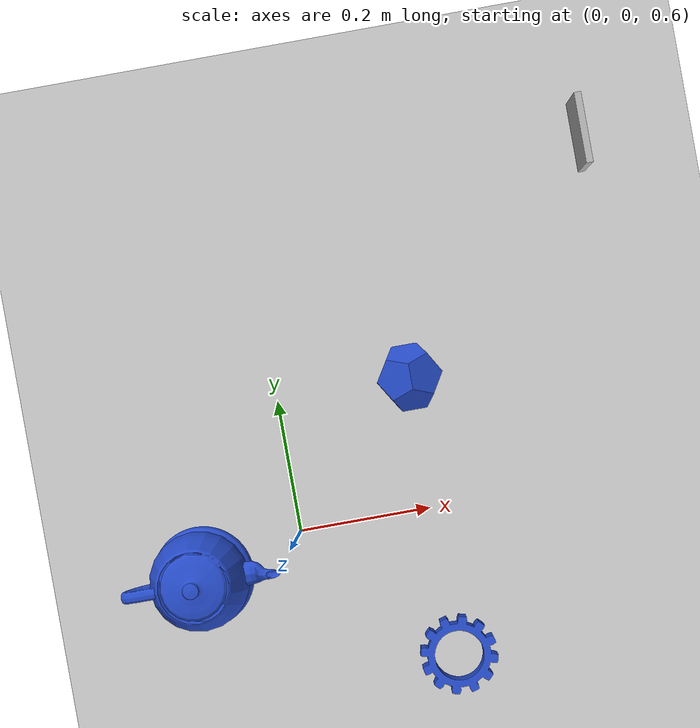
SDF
<?xml version="1.0" ?>
<sdf version="1.4">
  <world name="default">
    <include>
      <uri>model://ground_plane</uri>
    </include>

    <include>
      <uri>model://gears</uri>
      <name>gears1</name>
      <pose>0.2 -0.2 0.7 0 0 0</pose>
    </include>

    <include>
      <uri>model://teapot</uri>
      <name>teapot1</name>
      <pose>-0.1 0.0 0.9 0 0 0</pose>
    </include>

    <include>
      <uri>model://dodecahedron</uri>
      <name>dodecahedron1</name>
      <pose>0.2 0.2 0.7 0 0 0</pose>
    </include>

    <include>
      <uri>model://toroid</uri>
      <name>toroid1</name>
      <pose>-0.1 0.0 0.9 0 0 0</pose>
    </include>

    <include>
      <uri>model://toroidknot</uri>
      <name>toroidknot1</name>
      <pose>-0.1 0.0 0.9 0 0 0</pose>
    </include>

    <light name='user_point_light_0' type='point'>
      <pose frame=''>0.573839 -0.613666 1 0 -0 0</pose>
      <diffuse>0.5 0.5 0.5 1</diffuse>
      <specular>0.1 0.1 0.1 1</specular>
      <attenuation>
        <range>20</range>
        <constant>0.5</constant>
        <linear>0.01</linear>
        <quadratic>0.001</quadratic>
      </attenuation>
      <cast_shadows>0</cast_shadows>
      <direction>0 0 -1</direction>
    </light>

    <light name='user_point_light_1' type='point'>
      <pose frame=''>0.573839 -0.613666 1 0 -0 0</pose>
      <diffuse>0.5 0.5 0.5 1</diffuse>
      <specular>0.1 0.1 0.1 1</specular>
      <attenuation>
        <range>20</range>
        <constant>0.5</constant>
        <linear>0.01</linear>
        <quadratic>0.001</quadratic>
      </attenuation>
      <cast_shadows>0</cast_shadows>
      <direction>0 0 -1</direction>
    </light>

    <light name='user_spot_light_0' type='spot'>
      <pose frame=''>-1.7095 -0.748352 1 0 -0 0</pose>
      <diffuse>0.5 0.5 0.5 1</diffuse>
      <specular>0.1 0.1 0.1 1</specular>
      <direction>0 0 -1</direction>
      <attenuation>
        <range>20</range>
        <constant>0.5</constant>
        <linear>0.01</linear>
        <quadratic>0.001</quadratic>
      </attenuation>
      <cast_shadows>0</cast_shadows>
      <spot>
        <inner_angle>0.6</inner_angle>
        <outer_angle>1</outer_angle>
        <falloff>1</falloff>
      </spot>
    </light>

    <model name='rgb_cam'>
      <static>1</static>
      <pose frame=''>0.5 0.5 0.7 0 1.57 0</pose>
      <link name='rgb_camera'>
        <inertial>
          <mass>0.1</mass>
          <inertia>
            <ixx>8.41666666667e-05</ixx>
            <ixy>0</ixy>
            <ixz>0</ixz>
            <iyy>3.08333333333e-05</iyy>
            <iyz>0</iyz>
            <izz>0.000113333333333</izz>
          </inertia>
        </inertial>
        <collision name='collision'>
          <geometry>
            <box>
              <size>0.060 0.1 0.010</size>
            </box>
          </geometry>
          <max_contacts>10</max_contacts>
          <surface>
            <contact>
              <ode/>
            </contact>
            <bounce/>
            <friction>
              <torsional>
                <ode/>
              </torsional>
              <ode/>
            </friction>
          </surface>
        </collision>
        <visual name='visual'>
          <geometry>
            <box>
              <size>0.060 0.1 0.010</size>
            </box>
          </geometry>
        </visual>
        <sensor name="camera" type="camera">
          <camera>
            <horizontal_fov>1.57</horizontal_fov>
            <image>
              <width>640</width>
              <height>480</height>
              <format>R8G8B8</format>
            </image>
            <clip>
              <near>0.1</near>
              <far>100</far>
            </clip>
          </camera>
          <always_on>1</always_on>
          <update_rate>30</update_rate>
          <visualize>true</visualize>
          <plugin filename="libgazebo_ros_camera.so" name="camera_in_ros">
            <robotNamespace>dynamic_objects</robotNamespace>
            <cameraName>camera</cameraName>
            <imageTopicName>raw_image</imageTopicName>
            <cameraInfoTopicName>info_image</cameraInfoTopicName>
            <FrameName>cameraImage</FrameName>
            <Cy>0</Cy>
            <Cx>0</Cx>
            <updateRate>10.0</updateRate>
          </plugin>
        </sensor>
        <self_collide>0</self_collide>
        <kinematic>0</kinematic>
      </link>
    </model>

    <joint name = "joint_to_world" type="fixed">
      <parent>world</parent>
      <child>rgb_camera::link</child>
    </joint>

    <atmosphere type='adiabatic'/>
    <scene>
      <sky>
        <clouds>
          <speed>12</speed>
        </clouds>
      </sky>
    </scene>

    <physics name='default_physics' default='0' type='ode'>
      <max_step_size>0.001</max_step_size>
      <real_time_factor>1</real_time_factor>
      <real_time_update_rate>1000</real_time_update_rate>
    </physics>

    <!-- reference to your plugin -->
    <plugin name="dynamic_world_plugin" filename="libdynamic_world_plugin.so">
      <update_frequency>1.0</update_frequency>

      <model_to_track_name>banana1</model_to_track_name>

      <model_to_ignore_randcolours>garbagecollector,rgb_cam</model_to_ignore_randcolours>
      <model_to_ignore_movement>garbagecollector,rgb_cam,demo_table1,ground_plane,fetch,rubbish_bin1</model_to_ignore_movement>

      <x_max>0.7</x_max>
      <x_min>0.3</x_min>
      <y_max>0.7</y_max>
      <y_min>0.3</y_min>
      <z_max>0.01</z_max>
      <z_min>0.01</z_min>

      <x_max_distractors>1.0</x_max_distractors>
      <x_min_distractors>0.0</x_min_distractors>
      <y_max_distractors>1.0</y_max_distractors>
      <y_min_distractors>0.0</y_min_distractors>
      <z_max_distractors>0.03</z_max_distractors>
      <z_min_distractors>0.03</z_min_distractors>

      <z_increment_percentage>0.0</z_increment_percentage>

      <roll_max>0.0</roll_max>
      <roll_min>0.0</roll_min>
      <pitch_max>0.0</pitch_max>
      <pitch_min>0.0</pitch_min>
      <yaw_max>0.0</yaw_max>
      <yaw_min>0.0</yaw_min>

      <light_x_max>2.0</light_x_max>
      <light_x_min>-2.0</light_x_min>
      <light_y_max>2.0</light_y_max>
      <light_y_min>-2.0</light_y_min>
      <light_z_max>2.0</light_z_max>
      <light_z_min>2.0</light_z_min>

      <light_roll_max>0.0</light_roll_max>
      <light_roll_min>0.0</light_roll_min>
      <light_pitch_max>0.0</light_pitch_max>
      <light_pitch_min>0.0</light_pitch_min>
      <light_yaw_max>0.0</light_yaw_max>
      <light_yaw_min>0.0</light_yaw_min>

      <cam_x_max>0.5</cam_x_max>
      <cam_x_min>0.5</cam_x_min>
      <cam_y_max>0.5</cam_y_max>
      <cam_y_min>0.5</cam_y_min>
      <cam_z_max>0.7</cam_z_max>
      <cam_z_min>0.7</cam_z_min>

      <cam_roll_max>0.0</cam_roll_max>
      <cam_roll_min>0.0</cam_roll_min>
      <cam_pitch_max>1.57</cam_pitch_max>
      <cam_pitch_min>1.57</cam_pitch_min>
      <cam_yaw_max>0.0</cam_yaw_max>
      <cam_yaw_min>0.0</cam_yaw_min>

      <alpha>0.5</alpha>
      <beta>0.5</beta>
      <random_distribution_type>uniform</random_distribution_type>

      <colour_randomiser_active>yes</colour_randomiser_active>

    </plugin>

  </world>
</sdf>

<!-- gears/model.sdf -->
<sdf version='1.4'>
  <model name="gears">
      <static>0</static>
      <link name='link'>
        <inertial>
          <mass>0.25</mass>
          <inertia>
            <ixx>0.00015</ixx>
            <ixy>0.000000</ixy>
            <ixz>0.000000</ixz>
            <iyy>0.00015</iyy>
            <iyz>0.000000</iyz>
            <izz>0.00015</izz>
          </inertia>
        </inertial>
        <collision name='collision'>
          <geometry>
            <mesh>
              <uri>model://gears/meshes/gears.stl</uri>
              <scale>1 1 1</scale>
            </mesh>
          </geometry>
          <surface>
            <friction>
              <ode>
                <mu>30.0</mu>
                <mu2>30.0</mu2>
              </ode>
            </friction>
            <contact>
              <ode>
                <kp>1000000.0</kp>
                <kd>100.0</kd>
                <max_vel>1.0</max_vel>
                <min_depth>0.002</min_depth>
              </ode>
            </contact>
          </surface>
        </collision>
        <visual name='visual'>
          <geometry>
            <mesh>
              <uri>model://gears/meshes/gears.stl</uri>
              <scale>1 1 1</scale>
            </mesh>
          </geometry>
          <material>
            <script>
              <uri>file://media/materials/scripts/gazebo.material</uri>
              <name>Gazebo/Blue</name>
            </script>
          </material>
        </visual>
        <velocity_decay>
          <linear>0.000000</linear>
          <angular>0.000000</angular>
        </velocity_decay>
        <self_collide>0</self_collide>
        <kinematic>0</kinematic>
        <gravity>1</gravity>
      </link>
  </model>
</sdf>

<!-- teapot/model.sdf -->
<sdf version='1.4'>
  <model name="teapot">
      <static>0</static>
      <link name='link'>
        <inertial>
          <mass>0.25</mass>
          <inertia>
            <ixx>0.00015</ixx>
            <ixy>0.000000</ixy>
            <ixz>0.000000</ixz>
            <iyy>0.00015</iyy>
            <iyz>0.000000</iyz>
            <izz>0.00015</izz>
          </inertia>
        </inertial>
        <collision name='collision'>
          <geometry>
            <mesh>
              <uri>model://teapot/meshes/teapot.stl</uri>
              <scale>2 2 2</scale>
            </mesh>
          </geometry>
          <surface>
            <friction>
              <ode>
                <mu>30.0</mu>
                <mu2>30.0</mu2>
              </ode>
            </friction>
            <contact>
              <ode>
                <kp>1000000.0</kp>
                <kd>100.0</kd>
                <max_vel>1.0</max_vel>
                <min_depth>0.002</min_depth>
              </ode>
            </contact>
          </surface>
        </collision>
        <visual name='visual'>
          <geometry>
            <mesh>
              <uri>model://teapot/meshes/teapot.stl</uri>
              <scale>2 2 2</scale>
            </mesh>
          </geometry>
          <material>
            <script>
              <uri>file://media/materials/scripts/gazebo.material</uri>
              <name>Gazebo/Blue</name>
            </script>
          </material>
        </visual>
        <velocity_decay>
          <linear>0.000000</linear>
          <angular>0.000000</angular>
        </velocity_decay>
        <self_collide>0</self_collide>
        <kinematic>0</kinematic>
        <gravity>1</gravity>
      </link>
  </model>
</sdf>

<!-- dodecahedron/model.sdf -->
<sdf version='1.4'>
  <model name="dodecahedron">
      <static>0</static>
      <link name='link'>
        <inertial>
          <mass>0.25</mass>
          <inertia>
            <ixx>0.00015</ixx>
            <ixy>0.000000</ixy>
            <ixz>0.000000</ixz>
            <iyy>0.00015</iyy>
            <iyz>0.000000</iyz>
            <izz>0.00015</izz>
          </inertia>
        </inertial>
        <collision name='collision'>
          <geometry>
            <mesh>
              <uri>model://dodecahedron/meshes/dodecahedron.stl</uri>
              <scale>1 1 1</scale>
            </mesh>
          </geometry>
          <surface>
            <friction>
              <ode>
                <mu>30.0</mu>
                <mu2>30.0</mu2>
              </ode>
            </friction>
            <contact>
              <ode>
                <kp>1000000.0</kp>
                <kd>100.0</kd>
                <max_vel>1.0</max_vel>
                <min_depth>0.002</min_depth>
              </ode>
            </contact>
          </surface>
        </collision>
        <visual name='visual'>
          <geometry>
            <mesh>
              <uri>model://dodecahedron/meshes/dodecahedron.stl</uri>
              <scale>1 1 1</scale>
            </mesh>
          </geometry>
          <material>
            <script>
              <uri>file://media/materials/scripts/gazebo.material</uri>
              <name>Gazebo/Blue</name>
            </script>
          </material>
        </visual>
        <velocity_decay>
          <linear>0.000000</linear>
          <angular>0.000000</angular>
        </velocity_decay>
        <self_collide>0</self_collide>
        <kinematic>0</kinematic>
        <gravity>1</gravity>
      </link>
  </model>
</sdf>

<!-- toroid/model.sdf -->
<sdf version='1.4'>
  <model name="toroid">
      <static>0</static>
      <link name='link'>
        <inertial>
          <mass>0.25</mass>
          <inertia>
            <ixx>0.00015</ixx>
            <ixy>0.000000</ixy>
            <ixz>0.000000</ixz>
            <iyy>0.00015</iyy>
            <iyz>0.000000</iyz>
            <izz>0.00015</izz>
          </inertia>
        </inertial>
        <collision name='collision'>
          <geometry>
            <mesh>
              <uri>model://toroid/meshes/toroid.stl</uri>
              <scale>1 1 1</scale>
            </mesh>
          </geometry>
          <surface>
            <friction>
              <ode>
                <mu>30.0</mu>
                <mu2>30.0</mu2>
              </ode>
            </friction>
            <contact>
              <ode>
                <kp>1000000.0</kp>
                <kd>100.0</kd>
                <max_vel>1.0</max_vel>
                <min_depth>0.002</min_depth>
              </ode>
            </contact>
          </surface>
        </collision>
        <visual name='visual'>
          <geometry>
            <mesh>
              <uri>model://toroid/meshes/toroid.stl</uri>
              <scale>1 1 1</scale>
            </mesh>
          </geometry>
          <material>
            <script>
              <uri>file://media/materials/scripts/gazebo.material</uri>
              <name>Gazebo/Blue</name>
            </script>
          </material>
        </visual>
        <velocity_decay>
          <linear>0.000000</linear>
          <angular>0.000000</angular>
        </velocity_decay>
        <self_collide>0</self_collide>
        <kinematic>0</kinematic>
        <gravity>1</gravity>
      </link>
  </model>
</sdf>

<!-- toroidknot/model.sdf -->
<sdf version='1.4'>
  <model name="toroidknot">
      <static>0</static>
      <link name='link'>
        <inertial>
          <mass>0.25</mass>
          <inertia>
            <ixx>0.00015</ixx>
            <ixy>0.000000</ixy>
            <ixz>0.000000</ixz>
            <iyy>0.00015</iyy>
            <iyz>0.000000</iyz>
            <izz>0.00015</izz>
          </inertia>
        </inertial>
        <collision name='collision'>
          <geometry>
            <mesh>
              <uri>model://toroidknot/meshes/toroidknot.stl</uri>
              <scale>1 1 1</scale>
            </mesh>
          </geometry>
          <surface>
            <friction>
              <ode>
                <mu>30.0</mu>
                <mu2>30.0</mu2>
              </ode>
            </friction>
            <contact>
              <ode>
                <kp>1000000.0</kp>
                <kd>100.0</kd>
                <max_vel>1.0</max_vel>
                <min_depth>0.002</min_depth>
              </ode>
            </contact>
          </surface>
        </collision>
        <visual name='visual'>
          <geometry>
            <mesh>
              <uri>model://toroidknot/meshes/toroidknot.stl</uri>
              <scale>1 1 1</scale>
            </mesh>
          </geometry>
          <material>
            <script>
              <uri>file://media/materials/scripts/gazebo.material</uri>
              <name>Gazebo/Blue</name>
            </script>
          </material>
        </visual>
        <velocity_decay>
          <linear>0.000000</linear>
          <angular>0.000000</angular>
        </velocity_decay>
        <self_collide>0</self_collide>
        <kinematic>0</kinematic>
        <gravity>1</gravity>
      </link>
  </model>
</sdf>
